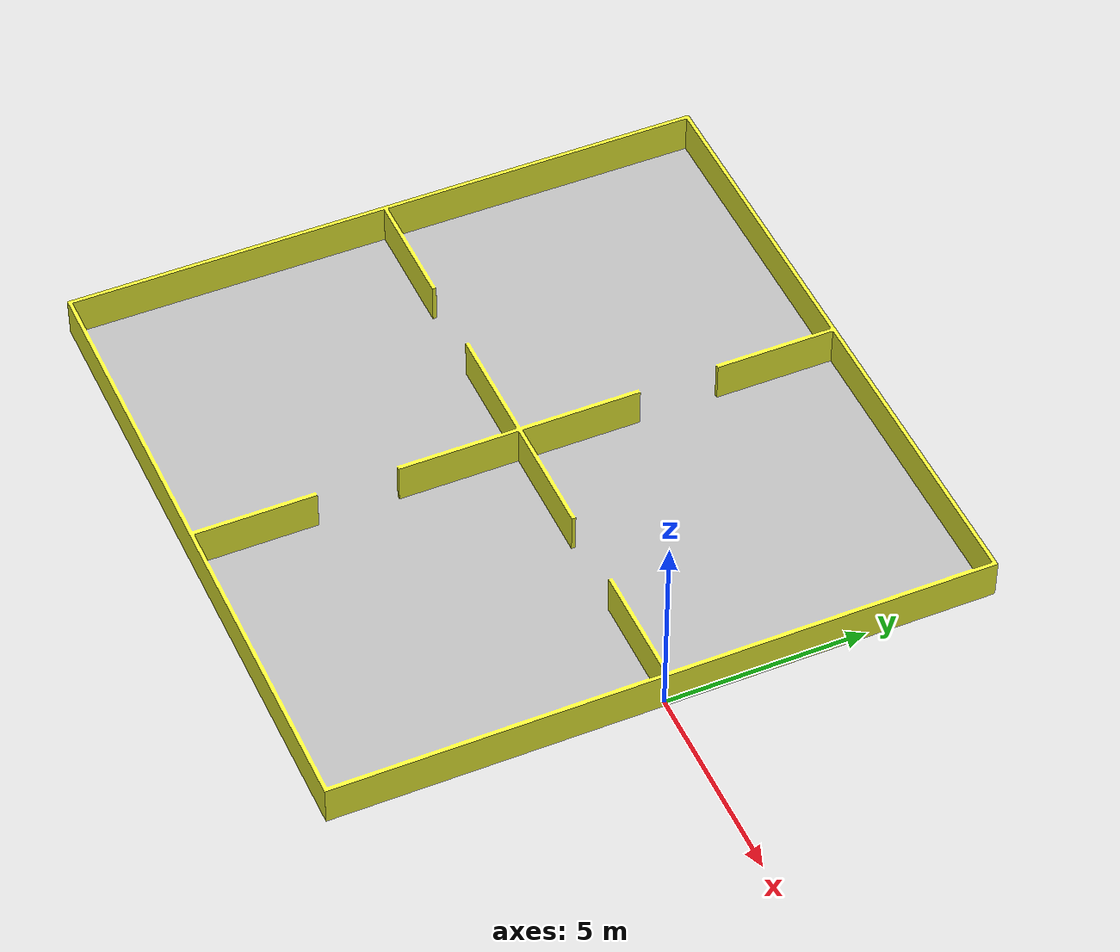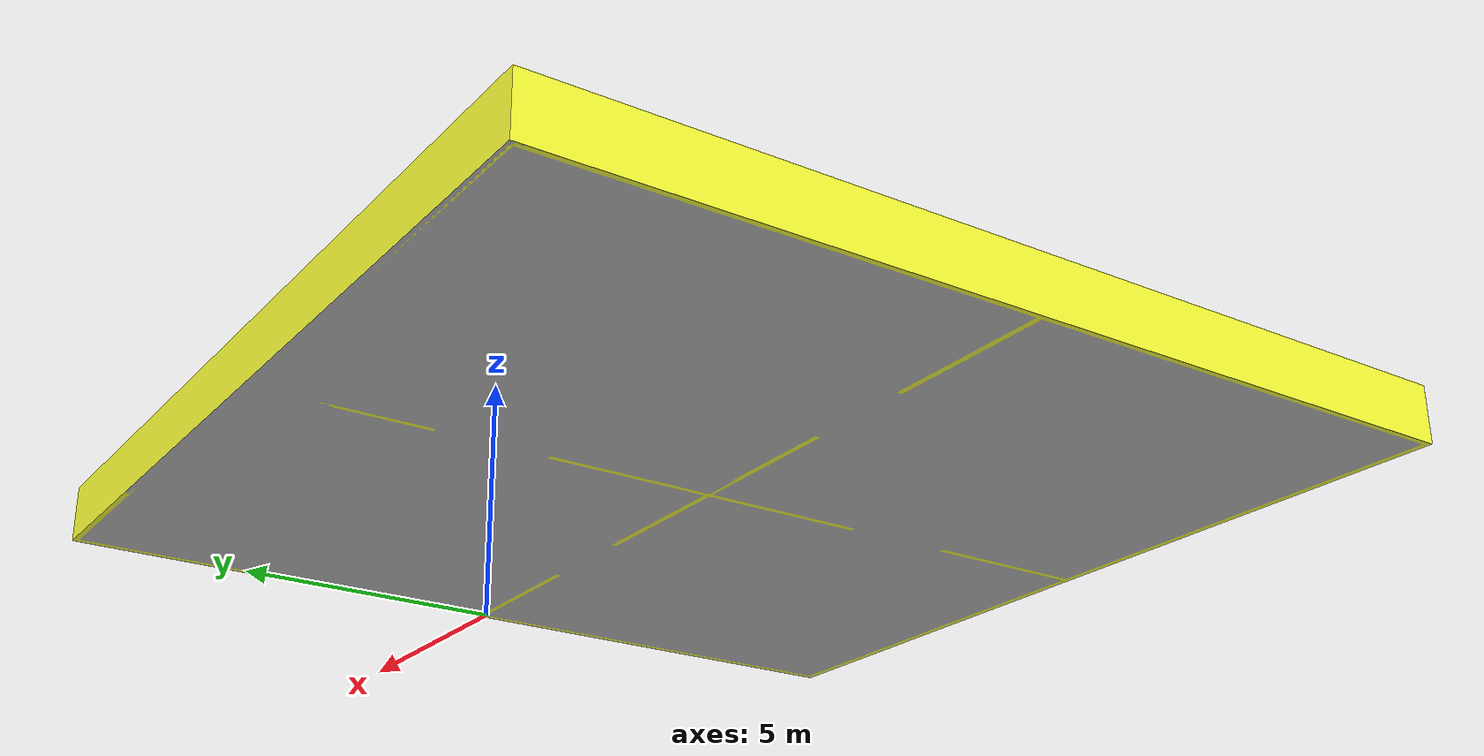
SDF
<?xml version="1.0"?>
<sdf version="1.4">
  <model name="arena_simple">
    <pose>0 0 0 0 0 0</pose>
    <static>true</static>
    <link name="arena_simple_link">
      <collision name="arena_simple_collision">
        <pose>0 0 0 0 0 0</pose>
        <geometry>
          <mesh>
            <uri>model://gazebo_worlds_cdt/models/arena_simple/meshes/arena_simple.dae</uri>
          </mesh>
        </geometry>
      </collision>
      <visual name="arena_simple_visual">
        <pose>0 0 0 0 0 0</pose>
        <geometry>
          <mesh>
            <uri>model://gazebo_worlds_cdt/models/arena_simple/meshes/arena_simple.dae</uri>
          </mesh>
        </geometry>
      </visual>
    </link>
  </model>
</sdf>
